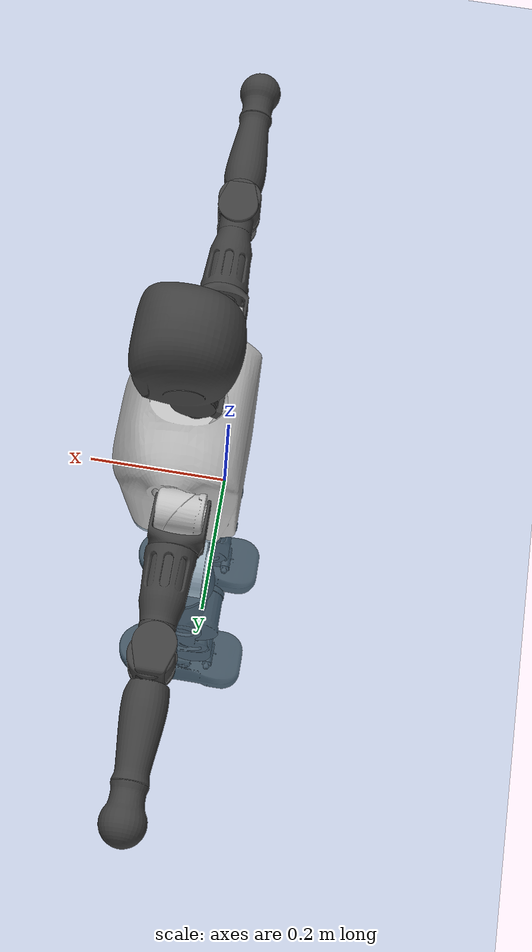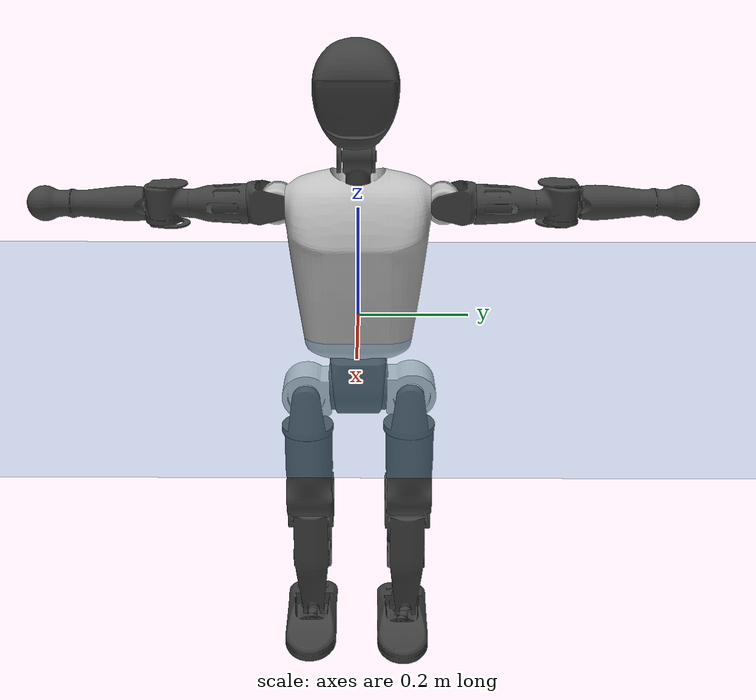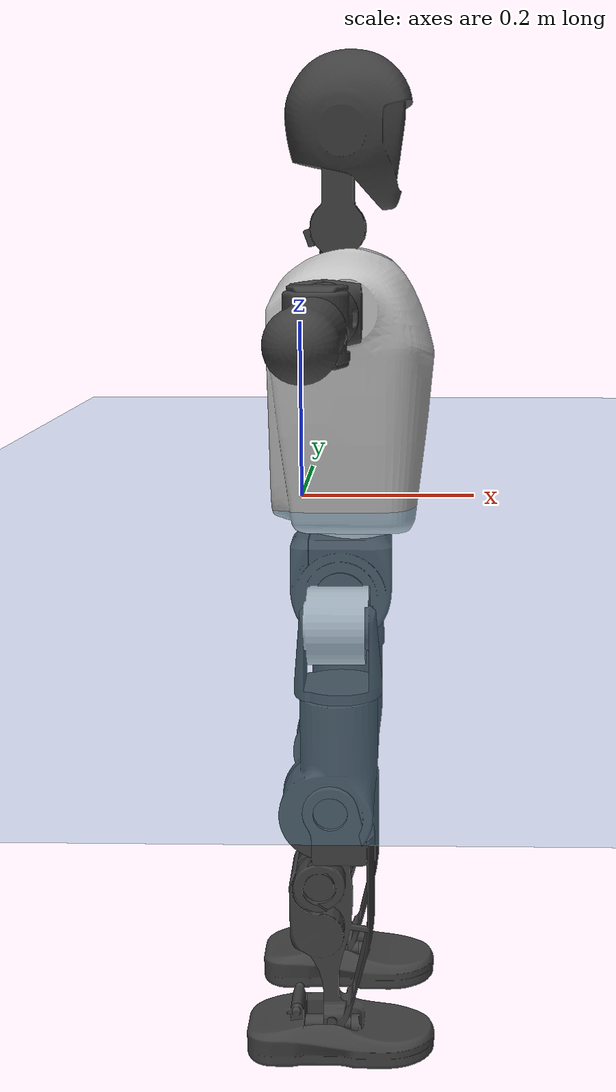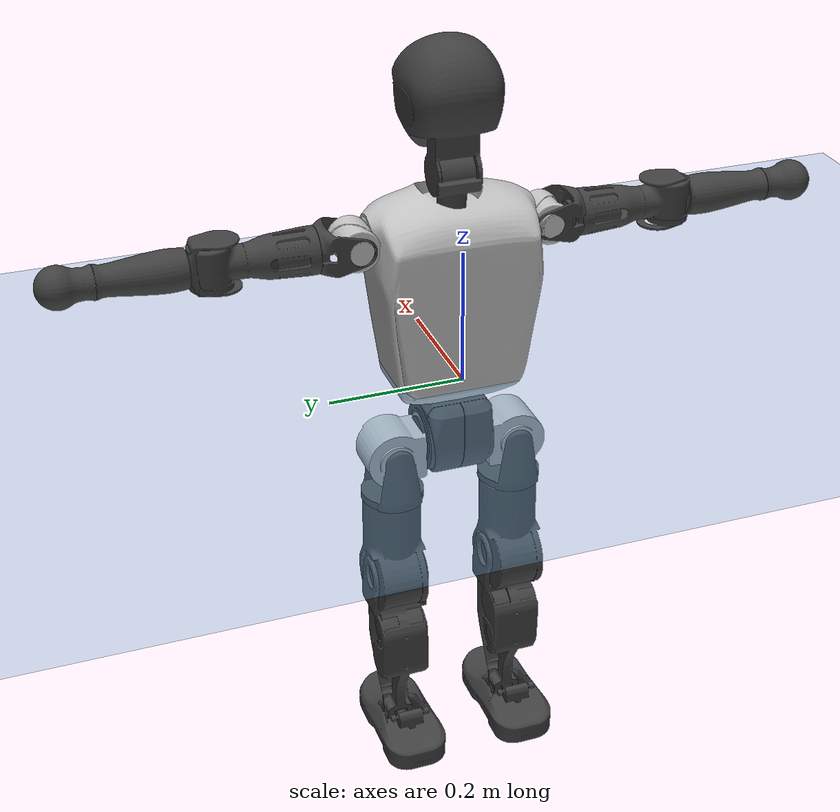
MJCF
<mujoco model="T1">
  <compiler angle="radian" assetdir="assets" balanceinertia="true" inertiafromgeom="false"/>

  <option timestep="0.005" density="1.2" viscosity="2e-05"/>

  <size nkey="1"/>

  <visual>
    <quality shadowsize="8192"/>
    <map shadowclip="0.5"/>
  </visual>

  <default>
    <default class="/">
      <joint armature="0.01" damping="0.01" frictionloss="0.1"/>
      <geom contype="0" conaffinity="0" group="1" solref="-1000 -80"/>
      <site size="0.01 0.005 0.005" group="5"/>
      <general forcelimited="true" biastype="affine" gainprm="25" biasprm="0 -25 -0.6"/>
      <default class="t1">
        <geom rgba="0.25 0.25 0.25 1"/>
        <default class="visual">
          <geom type="mesh" group="2"/>
        </default>
        <default class="collision">
          <geom group="3"/>
        </default>
        <default class="foot">
          <geom size="0.1115 0.05 0.015" type="box" condim="6" group="4" priority="1" solimp="0.015 1 0.015"/>
        </default>
        <default class="reward_collision_sphere">
          <geom group="5" rgba="1 0 0 1"/>
        </default>
      </default>
    </default>
  </default>

  <asset>
    <texture type="skybox" colorspace="auto" name="//unnamed_texture_0" builtin="gradient" rgb1="0.95 0.95 0.95" rgb2="0.95 0.95 0.95" width="100" height="600"/>
    <texture type="2d" colorspace="auto" name="texplane" builtin="checker" rgb1="0.345 0.575 0.748" rgb2="0.345 0.575 0.748" markrgb="1 1 1" width="512" height="512"/>
    <material name="MatPlane" class="/" texture="texplane" texuniform="true" texrepeat="2 2" specular="0.9"/>
    <mesh name="Trunk" class="/" file="Trunk.stl"/>
    <mesh name="H1" class="/" file="H1.stl"/>
    <mesh name="H2" class="/" file="H2.stl"/>
    <mesh name="AL1" class="/" file="AL1.stl"/>
    <mesh name="AL2" class="/" file="AL2.stl"/>
    <mesh name="AL3" class="/" file="AL3.stl"/>
    <mesh name="left_hand_link" class="/" file="left_hand_link.stl"/>
    <mesh name="AR1" class="/" file="AR1.stl"/>
    <mesh name="AR2" class="/" file="AR2.stl"/>
    <mesh name="AR3" class="/" file="AR3.stl"/>
    <mesh name="right_hand_link" class="/" file="right_hand_link.stl"/>
    <mesh name="Waist" class="/" file="Waist.stl"/>
    <mesh name="Hip_Pitch_Left" class="/" file="Hip_Pitch_Left.stl"/>
    <mesh name="Hip_Roll_Left" class="/" file="Hip_Roll_Left.stl"/>
    <mesh name="Hip_Yaw_Left" class="/" file="Hip_Yaw_Left.stl"/>
    <mesh name="Shank_Left" class="/" file="Shank_Left.stl"/>
    <mesh name="Ankle_Cross_Left" class="/" file="Ankle_Cross_Left.stl"/>
    <mesh name="left_foot_link" class="/" file="left_foot_link.stl"/>
    <mesh name="Hip_Pitch_Right" class="/" file="Hip_Pitch_Right.stl"/>
    <mesh name="Hip_Roll_Right" class="/" file="Hip_Roll_Right.stl"/>
    <mesh name="Hip_Yaw_Right" class="/" file="Hip_Yaw_Right.stl"/>
    <mesh name="Shank_Right" class="/" file="Shank_Right.stl"/>
    <mesh name="Ankle_Cross_Right" class="/" file="Ankle_Cross_Right.stl"/>
    <mesh name="right_foot_link" class="/" file="right_foot_link.stl"/>
  </asset>

  <worldbody>
    <geom name="floor" class="/" size="100 100 0.125" type="plane" group="0" material="MatPlane"/>
    <light name="toplight_shadow" class="/" pos="0 0 5" dir="0.0990148 0.0990148 -0.990148" type="directional" ambient="0.04 0.04 0.04" diffuse="0.55 0.55 0.55" specular="0.12 0.12 0.12"/>
    <light name="toplight_fill" class="/" pos="0 0 5" dir="0.0990148 0.0990148 -0.990148" type="directional" castshadow="false" ambient="0.04 0.04 0.04" diffuse="0.3 0.3 0.3" specular="0.08 0.08 0.08"/>
    <body name="trunk" childclass="t1" pos="-0.000572774 0.00102285 0.00274383" quat="1 0.000202538 -0.000424701 0.000321027">
      <inertial pos="0.0372119 -0.0030378 0.104985" quat="0.999955 -0.00105668 -0.00938398 4.79901e-05" mass="7.49538" diaginertia="0.0197967 0.042776 0.0521612"/>
      <joint name="//unnamed_joint_0" type="free" armature="0" damping="0" frictionloss="0"/>
      <geom name="//unnamed_geom_1" class="visual" rgba="0.76 0.76 0.76 1" mesh="Trunk"/>
      <geom name="//unnamed_geom_2" class="collision" size="0.0652191 0.0869588 0.130438" pos="0.0438884 0 0.118541" type="box"/>
      <geom name="//unnamed_geom_3" class="reward_collision_sphere" size="0.100003" pos="0.0438884 0 0.0987844"/>
      <geom name="//unnamed_geom_4" class="reward_collision_sphere" size="0.0130438" pos="0.0438884 0.0756029 0"/>
      <geom name="//unnamed_geom_5" class="reward_collision_sphere" size="0.0130438" pos="0.0438884 -0.0756029 0"/>
      <geom name="//unnamed_geom_6" class="reward_collision_sphere" size="0.0130438" pos="0.0438884 0.0951708 0.177812"/>
      <geom name="//unnamed_geom_7" class="reward_collision_sphere" size="0.0130438" pos="0.0438884 -0.0951708 0.177812"/>
      <site name="imu" pos="-0.0111723 0.0104235 -0.0115831" size="0.00869588"/>
      <camera name="track" pos="0 -1.77889 0" quat="0.707107 0.707107 0 0" mode="trackcom"/>
      <camera name="ego_camera" pos="0.0892397 0 0.414894" quat="-0.5 -0.5 0.5 0.5"/>
      <body name="H1" pos="0.0449995 0.000152647 0.238996" quat="0.999999 -0.000708567 -0.00100384 6.73183e-05">
        <inertial pos="-0.00124512 -0.00242549 0.057546" quat="0.764753 -0.0173903 0.00345125 0.64408" mass="0.308515" diaginertia="5.04203e-05 0.000129382 0.000145395"/>
        <joint name="AAHead_yaw" pos="0 0 0" axis="0.00713251 -0.00961512 0.999928" range="-1.58907 1.56746" armature="0.0097845" damping="0" frictionloss="0.0891764"/>
        <geom name="//unnamed_geom_8" class="visual" mesh="H1"/>
        <body name="H2" pos="0.00122547 -0.0027966 0.0608677" quat="0.999999 -0.000128784 0.000528627 -0.000892688">
          <inertial pos="0.00490982 -0.000371902 0.0980849" quat="0.988286 0.104671 -0.075034 -0.0818812" mass="0.417047" diaginertia="0.000428483 0.00108226 0.00167771"/>
          <joint name="Head_pitch" pos="0 0 0" axis="0.0024503 -0.999897 -0.0141168" stiffness="0.00871308" range="-1.20688 0.300371" armature="0.00933014" damping="0" frictionloss="0.0915567"/>
          <geom name="//unnamed_geom_9" class="visual" mesh="H2"/>
          <geom name="//unnamed_geom_10" class="collision" size="0.069567" pos="0.00731473 0 0.108663"/>
          <geom name="//unnamed_geom_11" class="reward_collision_sphere" size="0.0782629" pos="0.0146295 0 0.0987844"/>
        </body>
      </body>
      <body name="AL1" pos="0.0426397 0.0972937 0.217263" quat="0.999999 -0.00132609 -0.000176285 -0.000298166">
        <inertial pos="-0.000887498 0.0426605 -1.45405e-05" quat="0.502286 0.49691 -0.507327 0.493365" mass="0.34463" diaginertia="0.000295119 0.000708757 0.000270574"/>
        <joint name="Left_Shoulder_Pitch" pos="0 0 0" axis="-0.0051294 0.999982 0.00310924" range="-3.27404 1.24072" armature="0.00848742" damping="0.00552596" frictionloss="0.0753936"/>
        <geom name="//unnamed_geom_12" class="visual" rgba="0.76 0.76 0.76 1" mesh="AL1"/>
        <body name="AL2" pos="-0.00171959 0.044709 -4.15523e-05" quat="1 0.000158557 5.72134e-05 -8.62317e-06">
          <inertial pos="0.00165591 0.0338265 0.00239353" quat="0.489196 0.510484 -0.489269 0.510597" mass="0.112425" diaginertia="8.64525e-05 0.000192613 0.000176632"/>
          <joint name="Left_Shoulder_Roll" pos="0 0 0" axis="-0.999996 0.00269913 -0.000658308" stiffness="0.0086998" range="-1.52473 1.787" armature="0.00782586" damping="0" frictionloss="0.086307"/>
          <geom name="//unnamed_geom_13" class="visual" mesh="AL2"/>
          <body name="AL3" pos="0.00352023 0.0554314 -0.0015695" quat="1 0.00024281 0.000485326 0.000481973">
            <inertial pos="0.00243463 0.0758388 -0.000103924" quat="0.706745 0.707393 0.00980724 0.00319459" mass="0.672514" diaginertia="0.00257465 0.00729088 0.000564466"/>
            <joint name="Left_Elbow_Pitch" pos="0 0 0" axis="-0.00883828 -0.99996 0.00100465" range="-2.22835 2.32627" armature="0.00798068" damping="0.0123766" frictionloss="0.0747459"/>
            <geom name="//unnamed_geom_14" class="visual" mesh="AL3"/>
            <geom name="//unnamed_geom_15" class="collision" size="0.0260876 0.0652191" pos="0 0.0444723 0" quat="0.707105 0.707108 0 0" type="cylinder"/>
            <geom name="//unnamed_geom_16" class="reward_collision_sphere" size="0.0313052"/>
            <body name="left_hand_link" pos="-0.00231237 0.133979 0.00255615" quat="1 0.000869908 -9.23294e-05 -0.000240297">
              <inertial pos="0.000723608 0.0967081 0.00260031" quat="0.707657 0.706555 -0.000192832 -0.000871848" mass="0.215973" diaginertia="0.00178437 0.00469619 0.000204521"/>
              <joint name="Left_Elbow_Yaw" pos="0 0 0" axis="0.00702681 -0.00586691 0.999958" range="-2.48092 -0.0126337" armature="0.00980401" damping="0.00800115" frictionloss="0.0761478"/>
              <geom name="//unnamed_geom_17" class="visual" mesh="left_hand_link"/>
              <geom name="//unnamed_geom_18" class="collision" size="0.0260876 0.0760889" pos="0 0.115628 0" quat="0.707105 0.707108 0 0" type="cylinder"/>
              <geom name="//unnamed_geom_19" class="reward_collision_sphere" size="0.0434794"/>
              <geom name="//unnamed_geom_20" class="reward_collision_sphere" size="0.0304356" pos="0 0.0978391 0"/>
              <geom name="//unnamed_geom_21" class="reward_collision_sphere" size="0.0304356" pos="0 0.191231 0"/>
            </body>
          </body>
        </body>
      </body>
      <body name="AR1" pos="0.0390518 -0.0906132 0.216195" quat="1 -0.000608196 0.000252585 0.000369151">
        <inertial pos="-0.0030779 -0.0392621 0.00268057" quat="0.508971 0.488668 -0.504038 0.498093" mass="0.356818" diaginertia="0.000277823 0.000698236 0.00028197"/>
        <joint name="Right_Shoulder_Pitch" pos="0 0 0" axis="-0.00129701 -0.999997 0.00222358" stiffness="0.00435997" range="-1.22757 3.30565" armature="0.00863101" damping="0.0115961" frictionloss="0.0747519"/>
        <geom name="//unnamed_geom_22" class="visual" rgba="0.76 0.76 0.76 1" mesh="AR1"/>
        <body name="AR2" pos="-0.000529357 -0.041278 0.000556594" quat="1 -0.000152146 6.91168e-06 -4.89389e-05">
          <inertial pos="0.00356501 -0.0347991 0.0027084" quat="0.511507 0.488107 -0.511988 0.487832" mass="0.106479" diaginertia="8.31243e-05 0.000198685 0.000171335"/>
          <joint name="Right_Shoulder_Roll" pos="0 0 0" axis="-0.999847 -0.0174637 0.00103546" range="-1.69263 1.61256" armature="0.00758886" damping="0.0190932" frictionloss="0.0829589"/>
          <geom name="//unnamed_geom_23" class="visual" mesh="AR2"/>
          <body name="AR3" pos="0.000785153 -0.053281 -0.00196046" quat="1 -4.27265e-05 -4.02614e-05 -1.47135e-05">
            <inertial pos="-0.000513435 -0.0783184 0.00282031" quat="0.705912 0.708164 0.0137189 0.00207579" mass="0.673106" diaginertia="0.00277994 0.00691094 0.0006081"/>
            <joint name="Right_Elbow_Pitch" pos="0 0 0" axis="-0.000630308 0.999948 -0.0101447" range="-2.2194 2.21344" armature="0.00873628" damping="0.021417" frictionloss="0.0875382"/>
            <geom name="//unnamed_geom_24" class="visual" mesh="AR3"/>
            <geom name="//unnamed_geom_25" class="collision" size="0.0260876 0.0652191" pos="0 -0.0444723 0" quat="0.707105 0.707108 0 0" type="cylinder"/>
            <geom name="//unnamed_geom_26" class="reward_collision_sphere" size="0.0313052"/>
            <body name="right_hand_link" pos="0.000367719 -0.131226 -0.000706701" quat="1 -0.000417115 0.000652264 -0.000558376">
              <inertial pos="0.000250369 -0.0966286 -0.00205302" quat="0.705397 0.708797 -0.00471521 -0.000108897" mass="0.211319" diaginertia="0.00169668 0.00450801 0.000194064"/>
              <joint name="Right_Elbow_Yaw" pos="0 0 0" axis="0.000238516 -0.00113883 0.999999" stiffness="0.00231645" range="-0.0202332 2.44379" armature="0.00813786" damping="0" frictionloss="0.0989148"/>
              <geom name="//unnamed_geom_27" class="visual" mesh="right_hand_link"/>
              <geom name="//unnamed_geom_28" class="collision" size="0.0260876 0.0760889" pos="0 -0.115628 0" quat="0.707105 0.707108 0 0" type="cylinder"/>
              <geom name="//unnamed_geom_29" class="reward_collision_sphere" size="0.0434794"/>
              <geom name="//unnamed_geom_30" class="reward_collision_sphere" size="0.0304356" pos="0 -0.0978391 0"/>
              <geom name="//unnamed_geom_31" class="reward_collision_sphere" size="0.0304356" pos="0 -0.191231 0"/>
            </body>
          </body>
        </body>
      </body>
      <body name="Waist" pos="0.0469508 1.45034e-05 -0.113328" quat="1 -4.62312e-05 -0.000185751 0.000740635">
        <inertial pos="-0.000112516 0.00203834 0.00708712" quat="0.984078 0.00464202 -0.177676 0.000938369" mass="1.66977" diaginertia="0.00108523 0.00291671 0.00452693"/>
        <joint name="Waist" pos="0 0 0" axis="0.00433513 0.00744394 0.999963" stiffness="0.00808221" range="-1.55506 1.55491" armature="0.00782429" damping="0.0216782" frictionloss="0.0849024"/>
        <geom name="//unnamed_geom_32" class="visual" mesh="Waist"/>
        <body name="Hip_Pitch_Left" pos="-0.00128697 0.0963444 0.0024454" quat="1 -0.000528178 8.52038e-05 0.000708303">
          <inertial pos="-0.00233486 -0.00453491 -0.0174997" quat="0.97522 0.220772 0.0143458 0.000383673" mass="0.670298" diaginertia="0.000369874 0.000791889 0.00117993"/>
          <joint name="Left_Hip_Pitch" pos="0 0 0" axis="0.00130708 0.999992 -0.00390201" range="-1.80411 1.56765" armature="0.00734672" damping="0.0153375" frictionloss="0.0957888"/>
          <geom name="//unnamed_geom_33" class="visual" rgba="0.76 0.76 0.76 1" mesh="Hip_Pitch_Left"/>
          <body name="Hip_Roll_Left" pos="0.00265962 -0.00274143 -0.0216616" quat="1 -0.000194237 0.000266418 0.000113294">
            <inertial pos="0.00344636 -0.00205499 -0.0552884" quat="0.705258 -0.00885496 -0.00958568 0.708831" mass="0.245437" diaginertia="0.000369368 0.000837596 0.000483439"/>
            <joint name="Left_Hip_Roll" pos="0 0 0" axis="-0.999998 -0.00215194 -8.8332e-05" range="-1.57058 0.201645" armature="0.00978352" damping="0.021849" frictionloss="0.087806"/>
            <geom name="//unnamed_geom_34" class="visual" mesh="Hip_Roll_Left"/>
            <geom name="//unnamed_geom_35" class="reward_collision_sphere" size="0.0478273"/>
            <body name="Hip_Yaw_Left" pos="0.000277841 0.00188102 -0.0791281" quat="1 0.00034779 -0.000313922 -9.53819e-05">
              <inertial pos="-0.00559797 0.00108571 -0.0858283" quat="0.697713 -0.0328511 -0.0311668 0.714945" mass="1.46211" diaginertia="0.00552226 0.014435 0.0024708"/>
              <joint name="Left_Hip_Yaw" pos="0 0 0" axis="-0.000180722 0.00081837 -1" stiffness="0.00512993" range="-0.988764 1.00771" armature="0.00871707" damping="0" frictionloss="0.0988002"/>
              <geom name="//unnamed_geom_36" class="visual" mesh="Hip_Yaw_Left"/>
              <geom name="//unnamed_geom_37" class="collision" size="0.0434794 0.069567" type="cylinder"/>
              <body name="Shank_Left" pos="-0.00941183 -0.00194722 -0.135552" quat="0.999999 -0.000500345 -0.00097616 -0.000995975">
                <inertial pos="-0.00378591 -0.00216258 -0.121389" quat="0.996959 0.0115283 -0.026535 0.0723545" mass="1.15104" diaginertia="0.00730289 0.0198644 0.00175511"/>
                <joint name="Left_Knee_Pitch" pos="0 0 0" axis="0.0145434 0.999887 0.00374838" range="-0.00735013 2.28662" armature="0.0100204" damping="0" frictionloss="0.0869079"/>
                <geom name="//unnamed_geom_38" class="visual" mesh="Shank_Left"/>
                <geom name="//unnamed_geom_39" class="collision" size="0.0434794 0.0652191" pos="0 0 -0.118541" type="cylinder"/>
                <geom name="//unnamed_geom_40" class="reward_collision_sphere" size="0.0565232"/>
                <body name="Ankle_Cross_Left" pos="0.00221667 -0.0032342 -0.276979" quat="0.999999 -0.00086394 0.000508419 -0.000193299">
                  <inertial pos="-0.00154701 -0.000603887 -0.00722523" quat="0.454288 0.542759 0.548823 0.444779" mass="0.0464503" diaginertia="6.28688e-06 1.42555e-05 1.06739e-05"/>
                  <joint name="Left_Ankle_Pitch" pos="0 0 0" axis="-0.00176024 0.999998 -0.00074543" stiffness="0.00891259" range="-0.91031 0.393418" armature="0.00987726" damping="0.00396896" frictionloss="0.0980938"/>
                  <geom name="//unnamed_geom_41" class="visual" mesh="Ankle_Cross_Left"/>
                  <body name="left_foot_link" pos="-0.00300048 -0.00222016 -0.0145204" quat="0.999999 -0.000720021 0.000750129 0.000217602">
                    <inertial pos="-0.000397238 1.5137e-05 -0.00997751" quat="-0.00553172 0.616871 0.0120125 0.786953" mass="0.460372" diaginertia="0.000560839 0.00134552 0.00213254"/>
                    <joint name="Left_Ankle_Roll" pos="0 0 0" axis="-0.99993 -0.00218286 0.0116414" stiffness="0.00727062" range="-0.436835 0.479607" armature="0.00871931" damping="0.0094739" frictionloss="0.0924867"/>
                    <geom name="//unnamed_geom_42" class="visual" mesh="left_foot_link"/>
                    <geom name="left_foot" class="foot" size="0.102389 0.040892 0.0136075" pos="0.00731473 0 -0.0148177"/>
                    <geom name="//unnamed_geom_44" class="reward_collision_sphere" size="0.0452186" pos="0.00731473 0 -0.0148177"/>
                    <geom name="//unnamed_geom_45" class="reward_collision_sphere" size="0.0260876" pos="0.0694899 -0.0204573 -0.0148177"/>
                    <geom name="//unnamed_geom_46" class="reward_collision_sphere" size="0.0260876" pos="-0.0512031 -0.0204573 -0.0148177"/>
                    <site name="left_foot" class="foot" pos="0.00731473 0 -0.0148177" size="0.00869588"/>
                  </body>
                </body>
              </body>
            </body>
          </body>
        </body>
        <body name="Hip_Pitch_Right" pos="-0.00127086 -0.094516 -0.00077819" quat="1 -0.000177616 -0.000872622 0.000102137">
          <inertial pos="-0.00103056 0.00657725 -0.019588" quat="0.974214 -0.224665 0.0162045 -0.0130447" mass="0.644676" diaginertia="0.000368803 0.000818798 0.00113516"/>
          <joint name="Right_Hip_Pitch" pos="0 0 0" axis="-0.00418164 -0.999989 0.00233374" range="-1.58413 1.74916" armature="0.00925845" damping="0.00911221" frictionloss="0.089342"/>
          <geom name="//unnamed_geom_47" class="visual" rgba="0.76 0.76 0.76 1" mesh="Hip_Pitch_Right"/>
          <body name="Hip_Roll_Right" pos="0.00225442 -0.000318235 -0.0217686" quat="1 0.000202332 -0.000173635 2.87739e-05">
            <inertial pos="0.00183169 0.0023242 -0.0528729" quat="0.701245 -0.0132882 -0.0150588 0.712638" mass="0.243756" diaginertia="0.000362595 0.000836321 0.000467264"/>
            <joint name="Right_Hip_Roll" pos="0 0 0" axis="-0.999952 0.0024622 -0.00943228" stiffness="0.00988396" range="-0.184876 1.56321" armature="0.00751862" damping="0.00794563" frictionloss="0.0892028"/>
            <geom name="//unnamed_geom_48" class="visual" mesh="Hip_Roll_Right"/>
            <geom name="//unnamed_geom_49" class="reward_collision_sphere" size="0.0478273"/>
            <body name="Hip_Yaw_Right" pos="-0.00260579 0.000980513 -0.080661" quat="1 0.000353492 0.000179819 -0.000392658">
              <inertial pos="-0.00805262 3.83189e-05 -0.0900056" quat="0.713652 -0.0447786 -0.0292032 0.698457" mass="1.46513" diaginertia="0.00534233 0.0138141 0.00239052"/>
              <joint name="Right_Hip_Yaw" pos="0 0 0" axis="0.000371443 -0.00114468 -0.999999" range="-0.951825 0.951816" armature="0.00826094" damping="0.000911117" frictionloss="0.0881346"/>
              <geom name="//unnamed_geom_50" class="visual" mesh="Hip_Yaw_Right"/>
              <geom name="//unnamed_geom_51" class="collision" size="0.0434794 0.069567" type="cylinder"/>
              <body name="Shank_Right" pos="-0.008927 0.00204196 -0.12931" quat="1 -2.50291e-05 -9.28978e-05 4.68013e-05">
                <inertial pos="-0.00283102 -0.000316647 -0.123016" quat="0.998965 0.00209044 -0.0364913 -0.0270547" mass="1.09653" diaginertia="0.00709702 0.0194119 0.00179259"/>
                <joint name="Right_Knee_Pitch" pos="0 0 0" axis="-0.0065738 -0.999977 -0.00172876" range="-2.33941 -0.015666" armature="0.00977518" damping="0" frictionloss="0.0992443"/>
                <geom name="//unnamed_geom_52" class="visual" mesh="Shank_Right"/>
                <geom name="//unnamed_geom_53" class="collision" size="0.0434794 0.0652191" pos="0 0 -0.118541" type="cylinder"/>
                <geom name="//unnamed_geom_54" class="reward_collision_sphere" size="0.0565232"/>
                <body name="Ankle_Cross_Right" pos="-0.00201759 -0.00251287 -0.275751" quat="0.999999 -0.000394303 0.000183192 -0.00105106">
                  <inertial pos="-0.002297 0.000115102 -0.00692316" quat="0.443369 0.55077 0.550956 0.443309" mass="0.047614" diaginertia="5.84701e-06 1.41576e-05 1.0465e-05"/>
                  <joint name="Right_Ankle_Pitch" pos="0 0 0" axis="0.0028983 -0.999995 -0.00105444" range="-0.392679 0.909099" armature="0.00905602" damping="0.0216416" frictionloss="0.0860264"/>
                  <geom name="//unnamed_geom_55" class="visual" mesh="Ankle_Cross_Right"/>
                  <body name="right_foot_link" pos="0.000325181 -0.00145005 -0.0140075" quat="0.999999 0.00108251 0.000861126 -0.000270259">
                    <inertial pos="-0.00291929 0.000598568 -0.00871262" quat="-0.00219931 0.621069 0.00238084 0.783749" mass="0.450961" diaginertia="0.000550978 0.00128528 0.00203561"/>
                    <joint name="Right_Ankle_Roll" pos="0 0 0" axis="-0.999995 0.00311117 0.00099505" stiffness="0.00714347" range="-0.389409 0.396396" armature="0.00899121" damping="0.00306669" frictionloss="0.0860323"/>
                    <geom name="//unnamed_geom_56" class="visual" mesh="right_foot_link"/>
                    <geom name="right_foot" class="foot" size="0.0968375 0.0422855 0.0135588" pos="0.00731473 0 -0.0148177"/>
                    <geom name="//unnamed_geom_58" class="reward_collision_sphere" size="0.0347835"/>
                    <geom name="//unnamed_geom_59" class="reward_collision_sphere" size="0.0260876" pos="0.00731473 0 -0.0148177"/>
                    <geom name="//unnamed_geom_60" class="reward_collision_sphere" size="0.0260876" pos="0.0694899 0.0204573 -0.0148177"/>
                    <geom name="//unnamed_geom_61" class="reward_collision_sphere" size="0.0260876" pos="-0.0512031 0.0204573 -0.0148177"/>
                    <site name="right_foot" class="foot" pos="0.00731473 0 -0.0148177" size="0.00869588"/>
                  </body>
                </body>
              </body>
            </body>
          </body>
        </body>
      </body>
    </body>
  </worldbody>

  <contact>
    <pair class="/" geom1="floor" geom2="left_foot" name="//unnamed_contact_0"/>
    <pair class="/" geom1="floor" geom2="right_foot" name="//unnamed_contact_1"/>
  </contact>

  <actuator>
    <general name="AAHead_yaw" class="/" joint="AAHead_yaw" forcerange="-5.94975 5.94975" gainprm="20.5373" biasprm="0 -20.5373 -0.48187"/>
    <general name="Head_pitch" class="/" joint="Head_pitch" forcerange="-6.07366 6.07366" gainprm="20.5373" biasprm="0 -20.5373 -0.48187"/>
    <general name="Left_Shoulder_Pitch" class="/" joint="Left_Shoulder_Pitch" forcerange="-15.0121 15.0121" gainprm="20.5373" biasprm="0 -20.5373 -0.48187"/>
    <general name="Left_Shoulder_Roll" class="/" joint="Left_Shoulder_Roll" forcerange="-14.2138 14.2138" gainprm="20.5373" biasprm="0 -20.5373 -0.48187"/>
    <general name="Left_Elbow_Pitch" class="/" joint="Left_Elbow_Pitch" forcerange="-14.4994 14.4994" gainprm="20.5373" biasprm="0 -20.5373 -0.48187"/>
    <general name="Left_Elbow_Yaw" class="/" joint="Left_Elbow_Yaw" forcerange="-17.1988 17.1988" gainprm="20.5373" biasprm="0 -20.5373 -0.48187"/>
    <general name="Right_Shoulder_Pitch" class="/" joint="Right_Shoulder_Pitch" forcerange="-17.114 17.114" gainprm="20.5373" biasprm="0 -20.5373 -0.48187"/>
    <general name="Right_Shoulder_Roll" class="/" joint="Right_Shoulder_Roll" forcerange="-14.7687 14.7687" gainprm="20.5373" biasprm="0 -20.5373 -0.48187"/>
    <general name="Right_Elbow_Pitch" class="/" joint="Right_Elbow_Pitch" forcerange="-15.6159 15.6159" gainprm="20.5373" biasprm="0 -20.5373 -0.48187"/>
    <general name="Right_Elbow_Yaw" class="/" joint="Right_Elbow_Yaw" forcerange="-15.7826 15.7826" gainprm="20.5373" biasprm="0 -20.5373 -0.48187"/>
    <general name="Waist" class="/" joint="Waist" forcerange="-26.6592 26.6592" gainprm="20.5373" biasprm="0 -20.5373 -0.48187"/>
    <general name="Left_Hip_Pitch" class="/" joint="Left_Hip_Pitch" forcerange="-36.939 36.939" gainprm="20.5373" biasprm="0 -20.5373 -0.48187"/>
    <general name="Left_Hip_Roll" class="/" joint="Left_Hip_Roll" forcerange="-28.4427 28.4427" gainprm="20.5373" biasprm="0 -20.5373 -0.48187"/>
    <general name="Left_Hip_Yaw" class="/" joint="Left_Hip_Yaw" forcerange="-24.1638 24.1638" gainprm="20.5373" biasprm="0 -20.5373 -0.48187"/>
    <general name="Left_Knee_Pitch" class="/" joint="Left_Knee_Pitch" forcerange="-48.1385 48.1385" gainprm="20.5373" biasprm="0 -20.5373 -0.48187"/>
    <general name="Left_Ankle_Pitch" class="/" joint="Left_Ankle_Pitch" forcerange="-17.7286 17.7286" gainprm="20.5373" biasprm="0 -20.5373 -0.48187"/>
    <general name="Left_Ankle_Roll" class="/" joint="Left_Ankle_Roll" forcerange="-13.1522 13.1522" gainprm="20.5373" biasprm="0 -20.5373 -0.48187"/>
    <general name="Right_Hip_Pitch" class="/" joint="Right_Hip_Pitch" forcerange="-40.1329 40.1329" gainprm="20.5373" biasprm="0 -20.5373 -0.48187"/>
    <general name="Right_Hip_Roll" class="/" joint="Right_Hip_Roll" forcerange="-25.5834 25.5834" gainprm="20.5373" biasprm="0 -20.5373 -0.48187"/>
    <general name="Right_Hip_Yaw" class="/" joint="Right_Hip_Yaw" forcerange="-28.3367 28.3367" gainprm="20.5373" biasprm="0 -20.5373 -0.48187"/>
    <general name="Right_Knee_Pitch" class="/" joint="Right_Knee_Pitch" forcerange="-52.6515 52.6515" gainprm="20.5373" biasprm="0 -20.5373 -0.48187"/>
    <general name="Right_Ankle_Pitch" class="/" joint="Right_Ankle_Pitch" forcerange="-15.6525 15.6525" gainprm="20.5373" biasprm="0 -20.5373 -0.48187"/>
    <general name="Right_Ankle_Roll" class="/" joint="Right_Ankle_Roll" forcerange="-12.998 12.998" gainprm="20.5373" biasprm="0 -20.5373 -0.48187"/>
  </actuator>

  <sensor>
    <gyro site="imu" name="imu_angular_velocity"/>
    <velocimeter site="imu" name="imu_linear_velocity"/>
    <framelinvel objtype="site" objname="left_foot" name="left_foot_global_linear_velocity"/>
    <framelinvel objtype="site" objname="right_foot" name="right_foot_global_linear_velocity"/>
  </sensor>

  <keyframe>
    <key name="home" qpos="0 0 0.6385 1 0 0 0 0 0 0 1.4 0 -0.4 0 -1.4 0 0.4 0 -0.4 0 0 0.8 -0.4 0 0.4 0 0 -0.8 0.4 0"/>
  </keyframe>
</mujoco>
